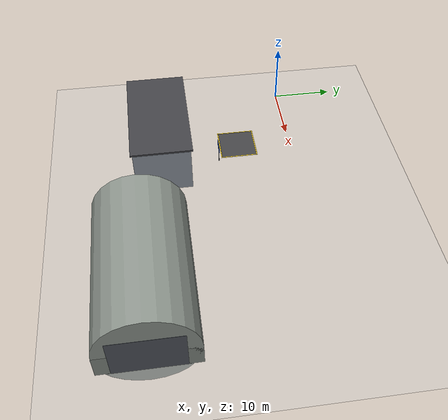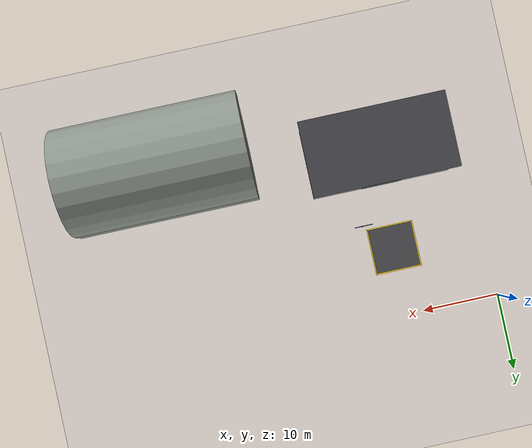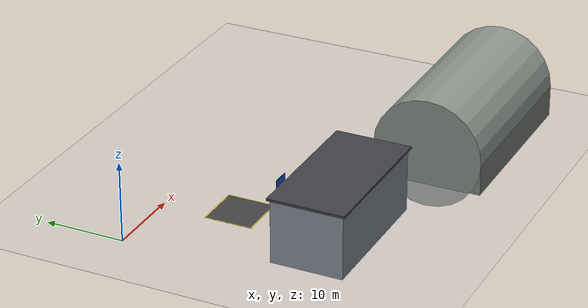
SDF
<sdf version="1.6">
 <world name="default">
  <include><uri>model://ground_plane</uri></include>
  <include><uri>model://sun</uri></include>
  <model name="alan_depo">
   <static>true</static>
   <pose>12 -9 0 0 0 0</pose>
   <link name="link">
    <visual name="zemin">
     <pose>0 0 0.024 0 0 0</pose>
     <geometry><box><size>6 6 0.006</size></box></geometry>
     <material><ambient>0.26 0.26 0.27 1</ambient><diffuse>0.26 0.26 0.27 1</diffuse></material>
    </visual>
    <visual name="cizgi_0">
     <pose>0 3 0.029 0 0 0</pose>
     <geometry><box><size>6.15 0.15 0.004</size></box></geometry>
     <material><ambient>0.95 0.80 0.10 1</ambient><diffuse>0.95 0.80 0.10 1</diffuse></material>
    </visual>
    <visual name="cizgi_1">
     <pose>0 -3 0.029 0 0 0</pose>
     <geometry><box><size>6.15 0.15 0.004</size></box></geometry>
     <material><ambient>0.95 0.80 0.10 1</ambient><diffuse>0.95 0.80 0.10 1</diffuse></material>
    </visual>
    <visual name="cizgi_2">
     <pose>3 0 0.029 0 0 0</pose>
     <geometry><box><size>0.15 6.15 0.004</size></box></geometry>
     <material><ambient>0.95 0.80 0.10 1</ambient><diffuse>0.95 0.80 0.10 1</diffuse></material>
    </visual>
    <visual name="cizgi_3">
     <pose>-3 0 0.029 0 0 0</pose>
     <geometry><box><size>0.15 6.15 0.004</size></box></geometry>
     <material><ambient>0.95 0.80 0.10 1</ambient><diffuse>0.95 0.80 0.10 1</diffuse></material>
    </visual>
    <visual name="direk">
     <pose>3.6 -3.6 1.5 0 0 0</pose>
     <geometry><cylinder><radius>0.07</radius><length>3.0</length></cylinder></geometry>
     <material><ambient>0.40 0.40 0.42 1</ambient><diffuse>0.40 0.40 0.42 1</diffuse></material>
    </visual>
    <visual name="tabela">
     <pose>3.6 -3.6 3.2 0 0 0</pose>
     <geometry><box><size>2.2 0.08 1</size></box></geometry>
     <material><ambient>0.10 0.35 0.90 1</ambient><diffuse>0.10 0.35 0.90 1</diffuse></material>
    </visual>
    <visual name="tabela_cerceve">
     <pose>3.6 -3.6 3.2 0 0 0</pose>
     <geometry><box><size>2.3 0.06 1.1</size></box></geometry>
     <material><ambient>0.25 0.25 0.27 1</ambient><diffuse>0.25 0.25 0.27 1</diffuse></material>
    </visual>
   </link>
  </model>
  <model name="depo_binasi">
   <static>true</static>
   <pose>12 -22 0 0 0 0</pose>
   <link name="link">
    <visual name="duvar">
     <pose>0 0 4 0 0 0</pose>
     <geometry><box><size>18 9 8</size></box></geometry>
     <material><ambient>0.55 0.58 0.62 1</ambient><diffuse>0.55 0.58 0.62 1</diffuse></material>
    </visual>
    <collision name="duvar_col">
     <pose>0 0 4 0 0 0</pose>
     <geometry><box><size>18 9 8</size></box></geometry>
    </collision>
    <visual name="cati">
     <pose>0 0 8.15 0 0 0</pose>
     <geometry><box><size>18.6 9.6 0.3</size></box></geometry>
     <material><ambient>0.25 0.25 0.27 1</ambient><diffuse>0.25 0.25 0.27 1</diffuse></material>
    </visual>
    <visual name="kapi">
     <pose>0 4.52 2.25 0 0 0</pose>
     <geometry><box><size>5 0.04 4.5</size></box></geometry>
     <material><ambient>0.30 0.32 0.35 1</ambient><diffuse>0.30 0.32 0.35 1</diffuse></material>
    </visual>
    <visual name="pencere_0">
     <pose>-7.5 4.52 6 0 0 0</pose>
     <geometry><box><size>1.6 0.04 1.1</size></box></geometry>
     <material><ambient>0.15 0.22 0.32 1</ambient><diffuse>0.15 0.22 0.32 1</diffuse></material>
    </visual>
    <visual name="pencere_1">
     <pose>-4.5 4.52 6 0 0 0</pose>
     <geometry><box><size>1.6 0.04 1.1</size></box></geometry>
     <material><ambient>0.15 0.22 0.32 1</ambient><diffuse>0.15 0.22 0.32 1</diffuse></material>
    </visual>
    <visual name="pencere_4">
     <pose>4.5 4.52 6 0 0 0</pose>
     <geometry><box><size>1.6 0.04 1.1</size></box></geometry>
     <material><ambient>0.15 0.22 0.32 1</ambient><diffuse>0.15 0.22 0.32 1</diffuse></material>
    </visual>
    <visual name="pencere_5">
     <pose>7.5 4.52 6 0 0 0</pose>
     <geometry><box><size>1.6 0.04 1.1</size></box></geometry>
     <material><ambient>0.15 0.22 0.32 1</ambient><diffuse>0.15 0.22 0.32 1</diffuse></material>
    </visual>
   </link>
  </model>
  <model name="hangar">
   <static>true</static>
   <pose>40 -26 0 0 0 0</pose>
   <link name="link">
    <visual name="taban">
     <pose>0 0 2 0 0 0</pose>
     <geometry><box><size>24 14 4</size></box></geometry>
     <material><ambient>0.50 0.53 0.50 1</ambient><diffuse>0.50 0.53 0.50 1</diffuse></material>
    </visual>
    <collision name="taban_col">
     <pose>0 0 2 0 0 0</pose>
     <geometry><box><size>24 14 4</size></box></geometry>
    </collision>
    <visual name="kemer">
     <pose>0 0 4 0 1.5708 0</pose>
     <geometry><cylinder><radius>7.0</radius><length>24.0</length></cylinder></geometry>
     <material><ambient>0.55 0.58 0.55 1</ambient><diffuse>0.55 0.58 0.55 1</diffuse></material>
    </visual>
    <visual name="hangar_kapi">
     <pose>12.02 0 3.5 0 0 0</pose>
     <geometry><box><size>0.04 10 7</size></box></geometry>
     <material><ambient>0.30 0.32 0.35 1</ambient><diffuse>0.30 0.32 0.35 1</diffuse></material>
    </visual>
   </link>
  </model>
 </world>
</sdf>
